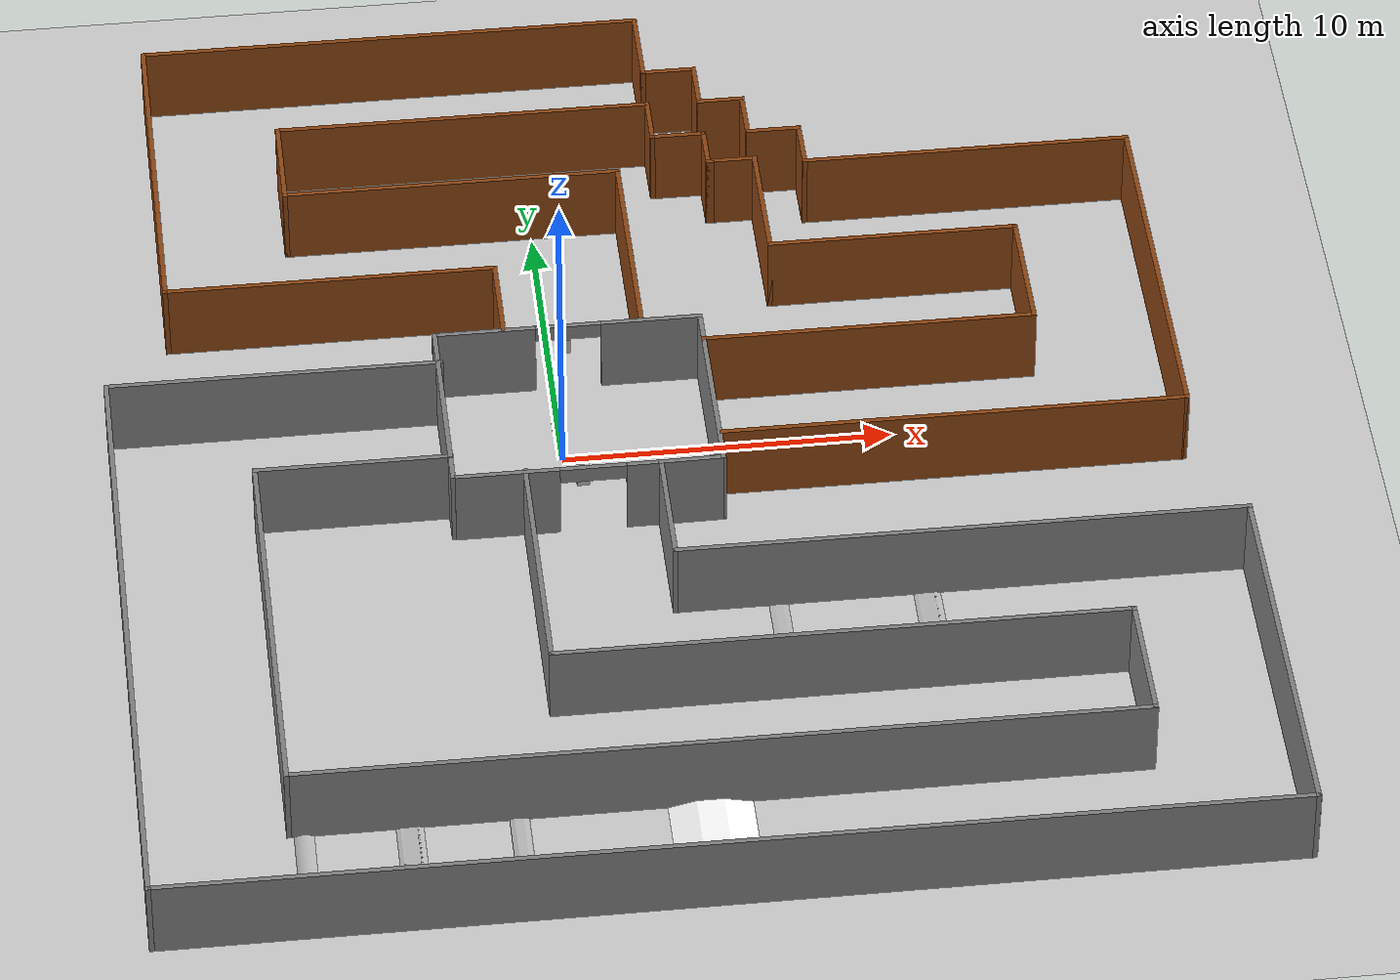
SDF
<sdf version="1.9">
 <world name="empty">
  <physics name="1ms" type="ode">
   <max_step_size>0.001</max_step_size>
   <real_time_factor>1</real_time_factor>
   <real_time_update_rate>1000</real_time_update_rate>
  </physics>
  <plugin name="ignition::gazebo::systems::Physics" filename="ignition-gazebo-physics-system"/>
  <plugin name="ignition::gazebo::systems::UserCommands" filename="ignition-gazebo-user-commands-system"/>
  <plugin name="ignition::gazebo::systems::SceneBroadcaster" filename="ignition-gazebo-scene-broadcaster-system"/>
  <plugin name="ignition::gazebo::systems::Sensors" filename="ignition-gazebo-sensors-system">
   <render_engine>ogre2</render_engine>
  </plugin>
  <plugin name="ignition::gazebo::systems::Contact" filename="libignition-gazebo-contact-system.so"/>
  <gravity>0 0 -9.8</gravity>
  <magnetic_field>6e-06 2.3e-05 -4.2e-05</magnetic_field>
  <atmosphere type="adiabatic"/>
  <scene><ambient>0.4 0.4 0.4 1</ambient><background>0.7 0.7 0.7 1</background><shadows>true</shadows></scene>
  <spherical_coordinates>
   <surface_model>EARTH_WGS84</surface_model>
   <world_frame_orientation>ENU</world_frame_orientation>
   <latitude_deg>-22.9</latitude_deg>
   <longitude_deg>-43.2</longitude_deg>
   <elevation>0</elevation>
   <heading_deg>0</heading_deg>
  </spherical_coordinates>
  <model name="ground_plane">
   <static>true</static>
   <link name="link">
    <collision name="collision">
     <geometry><plane><normal>0 0 1</normal><size>100 100</size></plane></geometry>
    </collision>
    <visual name="visual">
     <geometry><plane><normal>0 0 1</normal><size>100 100</size></plane></geometry>
     <material>
      <ambient>0.8 0.8 0.8 1</ambient>
      <diffuse>0.8 0.8 0.8 1</diffuse>
      <specular>0.8 0.8 0.8 1</specular>
     </material>
    </visual>
    <inertial>
     <mass>1</mass>
     <inertia><ixx>1</ixx><ixy>0</ixy><ixz>0</ixz><iyy>1</iyy><iyz>0</iyz><izz>1</izz></inertia>
    </inertial>
   </link>
  </model>
  <model name="speed_bump_1_short">
   <static>true</static>
   <link name="link">
    <collision name="collision">
     <geometry><mesh><uri>models/speed_bump_1_short//bump_2_060.dae</uri></mesh></geometry>
     <surface><friction><ode><mu>0.90000000000000002</mu><mu2>0.59999999999999998</mu2></ode></friction></surface>
    </collision>
    <visual name="visual">
     <geometry><mesh><uri>models/speed_bump_1_short//bump_2_060.dae</uri></mesh></geometry>
    </visual>
    <inertial>
     <mass>1</mass>
     <inertia><ixx>1</ixx><ixy>0</ixy><ixz>0</ixz><iyy>1</iyy><iyz>0</iyz><izz>1</izz></inertia>
    </inertial>
   </link>
   <pose>6.01068 -10.93096 0.0 0.0 -0.0 1.57469</pose>
  </model>
  <model name="speed_bump_2_short">
   <static>true</static>
   <link name="link">
    <collision name="collision">
     <geometry><mesh><uri>models/speed_bump_2_short//bump_1_060.dae</uri></mesh></geometry>
     <surface><friction><ode><mu>0.90000000000000002</mu><mu2>0.59999999999999998</mu2></ode></friction></surface>
    </collision>
    <visual name="visual">
     <geometry><mesh><uri>models/speed_bump_2_short//bump_1_060.dae</uri></mesh></geometry>
    </visual>
    <inertial>
     <mass>1</mass>
     <inertia><ixx>1</ixx><ixy>0</ixy><ixz>0</ixz><iyy>1</iyy><iyz>0</iyz><izz>1</izz></inertia>
    </inertial>
   </link>
   <pose>10.58606 -10.85246 0.0 0.0 -0.0 1.57586</pose>
  </model>
  <model name="ramp_2">
   <static>true</static>
   <link name="link">
    <collision name="collision">
     <geometry><mesh><uri>models/ramp_2//ramp_020.dae</uri></mesh></geometry>
     <surface><friction><ode><mu>0.90000000000000002</mu><mu2>0.59999999999999998</mu2></ode></friction></surface>
    </collision>
    <visual name="visual"><geometry><mesh><uri>models/ramp_2//ramp_020.dae</uri></mesh></geometry></visual>
    <inertial>
     <mass>1</mass>
     <inertia><ixx>1</ixx><ixy>0</ixy><ixz>0</ixz><iyy>1</iyy><iyz>0</iyz><izz>1</izz></inertia>
    </inertial>
   </link>
   <pose>1.53805 -18.79726 0.0 0.0 -0.0 0.0</pose>
  </model>
  <model name="speed_bump_1">
   <static>true</static>
   <link name="link">
    <collision name="collision">
     <geometry><mesh><uri>models/speed_bump_1//bump_1.dae</uri></mesh></geometry>
     <surface><friction><ode><mu>0.90000000000000002</mu><mu2>0.59999999999999998</mu2></ode></friction></surface>
    </collision>
    <visual name="visual"><geometry><mesh><uri>models/speed_bump_1//bump_1.dae</uri></mesh></geometry></visual>
    <inertial>
     <mass>1</mass>
     <inertia><ixx>1</ixx><ixy>0</ixy><ixz>0</ixz><iyy>1</iyy><iyz>0</iyz><izz>1</izz></inertia>
    </inertial>
   </link>
   <pose>-2.46827 -18.89366 0.0 0.0 -0.0 1.57</pose>
  </model>
  <model name="speed_bump_2">
   <static>true</static>
   <link name="link">
    <collision name="collision">
     <geometry><mesh><uri>models/speed_bump_2//bump_2.dae</uri></mesh></geometry>
     <surface><friction><ode><mu>0.90000000000000002</mu><mu2>0.59999999999999998</mu2></ode></friction></surface>
    </collision>
    <visual name="visual"><geometry><mesh><uri>models/speed_bump_2//bump_2.dae</uri></mesh></geometry></visual>
    <inertial>
     <mass>1</mass>
     <inertia><ixx>1</ixx><ixy>0</ixy><ixz>0</ixz><iyy>1</iyy><iyz>0</iyz><izz>1</izz></inertia>
    </inertial>
   </link>
   <pose>-5.52609 -18.95126 0.0 0.0 -0.0 1.57</pose>
  </model>
  <model name="speed_bump_3">
   <static>true</static>
   <link name="link">
    <collision name="collision">
     <geometry><mesh><uri>models/speed_bump_3//bump_3.dae</uri></mesh></geometry>
     <surface><friction><ode><mu>0.90000000000000002</mu><mu2>0.59999999999999998</mu2></ode></friction></surface>
    </collision>
    <visual name="visual"><geometry><mesh><uri>models/speed_bump_3//bump_3.dae</uri></mesh></geometry></visual>
    <inertial>
     <mass>1</mass>
     <inertia><ixx>1</ixx><ixy>0</ixy><ixz>0</ixz><iyy>1</iyy><iyz>0</iyz><izz>1</izz></inertia>
    </inertial>
   </link>
   <pose>-8.70571 -18.90436 0.0 0.0 -0.0 1.56477</pose>
  </model>
  <model name="indoor_no_doors_2">
   <pose>3.07878 -0.765747 0 0 -0 0</pose>
   <link name="Wall_1">
    <collision name="Wall_1_Collision">
     <geometry><box><size>33.5 0.15 2.5</size></box></geometry>
     <pose>0 0 1.25 0 -0 0</pose>
    </collision>
    <visual name="Wall_1_Visual">
     <pose>0 0 1.25 0 -0 0</pose>
     <geometry><box><size>33.5 0.15 2.5</size></box></geometry>
     <material>
      <ambient>0.5 0.5 0.5 1</ambient>
      <diffuse>0.5 0.5 0.5 1</diffuse>
      <specular>0.2 0.2 0.2 1</specular>
     </material>
     <meta><layer>0</layer></meta>
    </visual>
    <pose>1e-06 -18.2804 0 0 -0 0</pose>
    <inertial>
     <mass>1</mass>
     <inertia><ixx>1</ixx><ixy>0</ixy><ixz>0</ixz><iyy>1</iyy><iyz>0</iyz><izz>1</izz></inertia>
    </inertial>
   </link>
   <link name="Wall_10">
    <collision name="Wall_10_Collision">
     <geometry><box><size>25.25 0.15 2.5</size></box></geometry>
     <pose>0 0 1.25 0 -0 0</pose>
    </collision>
    <visual name="Wall_10_Visual">
     <pose>0 0 1.25 0 -0 0</pose>
     <geometry><box><size>25.25 0.15 2.5</size></box></geometry>
     <material>
      <ambient>0.5 0.5 0.5 1</ambient>
      <diffuse>0.5 0.5 0.5 1</diffuse>
      <specular>0.2 0.2 0.2 1</specular>
     </material>
     <meta><layer>0</layer></meta>
    </visual>
    <pose>0.064266 -14.2262 0 0 -0 3.14159</pose>
    <inertial>
     <mass>1</mass>
     <inertia><ixx>1</ixx><ixy>0</ixy><ixz>0</ixz><iyy>1</iyy><iyz>0</iyz><izz>1</izz></inertia>
    </inertial>
   </link>
   <link name="Wall_11">
    <collision name="Wall_11_Collision">
     <geometry><box><size>13 0.15 2.5</size></box></geometry>
     <pose>0 0 1.25 0 -0 0</pose>
    </collision>
    <visual name="Wall_11_Visual">
     <pose>0 0 1.25 0 -0 0</pose>
     <geometry><box><size>13 0.15 2.5</size></box></geometry>
     <material>
      <ambient>0.5 0.5 0.5 1</ambient>
      <diffuse>0.5 0.5 0.5 1</diffuse>
      <specular>0.2 0.2 0.2 1</specular>
     </material>
     <meta><layer>0</layer></meta>
    </visual>
    <pose>-12.4857 -7.80119 0 0 -0 1.5708</pose>
    <inertial>
     <mass>1</mass>
     <inertia><ixx>1</ixx><ixy>0</ixy><ixz>0</ixz><iyy>1</iyy><iyz>0</iyz><izz>1</izz></inertia>
    </inertial>
   </link>
   <link name="Wall_12">
    <collision name="Wall_12_Collision">
     <geometry><box><size>6 0.15 2.5</size></box></geometry>
     <pose>0 0 1.25 0 -0 0</pose>
    </collision>
    <visual name="Wall_12_Visual">
     <pose>0 0 1.25 0 -0 0</pose>
     <geometry><box><size>6 0.15 2.5</size></box></geometry>
     <material>
      <ambient>0.5 0.5 0.5 1</ambient>
      <diffuse>0.5 0.5 0.5 1</diffuse>
      <specular>0.2 0.2 0.2 1</specular>
     </material>
     <meta><layer>0</layer></meta>
    </visual>
    <pose>-9.56073 -1.37619 0 0 -0 0</pose>
    <inertial>
     <mass>1</mass>
     <inertia><ixx>1</ixx><ixy>0</ixy><ixz>0</ixz><iyy>1</iyy><iyz>0</iyz><izz>1</izz></inertia>
    </inertial>
   </link>
   <link name="Wall_14">
    <collision name="Wall_14_Collision">
     <geometry><box><size>21.25 0.15 2.5</size></box></geometry>
     <pose>0 0 1.25 0 -0 0</pose>
    </collision>
    <visual name="Wall_14_Visual">
     <pose>0 0 1.25 0 -0 0</pose>
     <geometry><box><size>21.25 0.15 2.5</size></box></geometry>
     <material>
      <ambient>0.5 0.5 0.5 1</ambient>
      <diffuse>0.5 0.5 0.5 1</diffuse>
      <specular>0.2 0.2 0.2 1</specular>
     </material>
     <meta><layer>0</layer></meta>
    </visual>
    <pose>-16.675 -7.73042 0 0 -0 1.5708</pose>
    <inertial>
     <mass>1</mass>
     <inertia><ixx>1</ixx><ixy>0</ixy><ixz>0</ixz><iyy>1</iyy><iyz>0</iyz><izz>1</izz></inertia>
    </inertial>
   </link>
   <link name="Wall_15">
    <collision name="Wall_15_Collision">
     <geometry><box><size>10.25 0.15 2.5</size></box></geometry>
     <pose>0 0 1.25 0 -0 0</pose>
    </collision>
    <visual name="Wall_15_Visual">
     <pose>0 0 1.25 0 -0 0</pose>
     <geometry><box><size>10.25 0.15 2.5</size></box></geometry>
     <material>
      <ambient>0.5 0.5 0.5 1</ambient>
      <diffuse>0.5 0.5 0.5 1</diffuse>
      <specular>0.2 0.2 0.2 1</specular>
     </material>
     <meta><layer>0</layer></meta>
    </visual>
    <pose>-11.625 2.81958 0 0 -0 0</pose>
    <inertial>
     <mass>1</mass>
     <inertia><ixx>1</ixx><ixy>0</ixy><ixz>0</ixz><iyy>1</iyy><iyz>0</iyz><izz>1</izz></inertia>
    </inertial>
   </link>
   <link name="Wall_17">
    <collision name="Wall_17_Collision">
     <geometry><box><size>6.5 0.15 2.5</size></box></geometry>
     <pose>0 0 1.25 0 -0 0</pose>
    </collision>
    <visual name="Wall_17_Visual">
     <pose>0 0 1.25 0 -0 0</pose>
     <geometry><box><size>6.5 0.15 2.5</size></box></geometry>
     <material>
      <ambient>0.5 0.5 0.5 1</ambient>
      <diffuse>0.5 0.5 0.5 1</diffuse>
      <specular>0.2 0.2 0.2 1</specular>
     </material>
     <meta><layer>0</layer></meta>
    </visual>
    <pose>-6.65095 0.864976 0 0 0 -1.5708</pose>
    <inertial>
     <mass>1</mass>
     <inertia><ixx>1</ixx><ixy>0</ixy><ixz>0</ixz><iyy>1</iyy><iyz>0</iyz><izz>1</izz></inertia>
    </inertial>
   </link>
   <link name="Wall_2">
    <collision name="Wall_2_Collision">
     <geometry><box><size>12.25 0.15 2.5</size></box></geometry>
     <pose>0 0 1.25 0 -0 0</pose>
    </collision>
    <visual name="Wall_2_Visual">
     <pose>0 0 1.25 0 -0 0</pose>
     <geometry><box><size>12.25 0.15 2.5</size></box></geometry>
     <material>
      <ambient>0.5 0.5 0.5 1</ambient>
      <diffuse>0.5 0.5 0.5 1</diffuse>
      <specular>0.2 0.2 0.2 1</specular>
     </material>
     <meta><layer>0</layer></meta>
    </visual>
    <pose>16.675 -12.2304 0 0 -0 1.5708</pose>
    <inertial>
     <mass>1</mass>
     <inertia><ixx>1</ixx><ixy>0</ixy><ixz>0</ixz><iyy>1</iyy><iyz>0</iyz><izz>1</izz></inertia>
    </inertial>
   </link>
   <link name="Wall_24">
    <pose>-2.60095 4.03998 0 0 -0 0</pose>
    <visual name="Wall_24_Visual_0">
     <pose>-2.55487 0 1.25 0 -0 0</pose>
     <geometry><box><size>3.14026 0.15 2.5</size></box></geometry>
     <material>
      <ambient>0.5 0.5 0.5 1</ambient>
      <diffuse>0.5 0.5 0.5 1</diffuse>
      <specular>0.2 0.2 0.2 1</specular>
     </material>
     <meta><layer>0</layer></meta>
    </visual>
    <collision name="Wall_24_Collision_0">
     <geometry><box><size>3.14026 0.15 2.5</size></box></geometry>
     <pose>-2.55487 0 1.25 0 -0 0</pose>
    </collision>
    <visual name="Wall_24_Visual_1">
     <pose>2.57013 0 1.25 0 -0 0</pose>
     <geometry><box><size>3.10974 0.15 2.5</size></box></geometry>
     <material>
      <ambient>0.5 0.5 0.5 1</ambient>
      <diffuse>0.5 0.5 0.5 1</diffuse>
      <specular>0.2 0.2 0.2 1</specular>
     </material>
     <meta><layer>0</layer></meta>
    </visual>
    <collision name="Wall_24_Collision_1">
     <geometry><box><size>3.10974 0.15 2.5</size></box></geometry>
     <pose>2.57013 0 1.25 0 -0 0</pose>
    </collision>
    <visual name="Wall_24_Visual_2">
     <pose>0.015256 0 2.25 0 -0 0</pose>
     <geometry><box><size>2 0.15 0.5</size></box></geometry>
     <material>
      <ambient>0.5 0.5 0.5 1</ambient>
      <diffuse>0.5 0.5 0.5 1</diffuse>
      <specular>0.2 0.2 0.2 1</specular>
     </material>
     <meta><layer>0</layer></meta>
    </visual>
    <collision name="Wall_24_Collision_2">
     <geometry><box><size>2 0.15 0.5</size></box></geometry>
     <pose>0.015256 0 2.25 0 -0 0</pose>
    </collision>
    <inertial>
     <mass>1</mass>
     <inertia><ixx>1</ixx><ixy>0</ixy><ixz>0</ixz><iyy>1</iyy><iyz>0</iyz><izz>1</izz></inertia>
    </inertial>
   </link>
   <link name="Wall_27">
    <collision name="Wall_27_Collision">
     <geometry><box><size>6.5 0.15 2.5</size></box></geometry>
     <pose>0 0 1.25 0 -0 0</pose>
    </collision>
    <visual name="Wall_27_Visual">
     <pose>0 0 1.25 0 -0 0</pose>
     <geometry><box><size>6.5 0.15 2.5</size></box></geometry>
     <material>
      <ambient>0.5 0.5 0.5 1</ambient>
      <diffuse>0.5 0.5 0.5 1</diffuse>
      <specular>0.2 0.2 0.2 1</specular>
     </material>
     <meta><layer>0</layer></meta>
    </visual>
    <pose>1.44905 0.864976 0 0 0 -1.5708</pose>
    <inertial>
     <mass>1</mass>
     <inertia><ixx>1</ixx><ixy>0</ixy><ixz>0</ixz><iyy>1</iyy><iyz>0</iyz><izz>1</izz></inertia>
    </inertial>
   </link>
   <link name="Wall_29">
    <collision name="Wall_29_Collision">
     <geometry><box><size>2.02416 0.15 2.5</size></box></geometry>
     <pose>0 0 1.25 0 -0 0</pose>
    </collision>
    <visual name="Wall_29_Visual">
     <pose>0 0 1.25 0 -0 0</pose>
     <geometry><box><size>2.02416 0.15 2.5</size></box></geometry>
     <material>
      <ambient>0.5 0.5 0.5 1</ambient>
      <diffuse>0.5 0.5 0.5 1</diffuse>
      <specular>0.2 0.2 0.2 1</specular>
     </material>
     <meta><layer>0</layer></meta>
    </visual>
    <pose>0.512027 -2.32022 0 0 0 -3.13071</pose>
    <inertial>
     <mass>1</mass>
     <inertia><ixx>1</ixx><ixy>0</ixy><ixz>0</ixz><iyy>1</iyy><iyz>0</iyz><izz>1</izz></inertia>
    </inertial>
   </link>
   <link name="Wall_3">
    <collision name="Wall_3_Collision">
     <geometry><box><size>17.25 0.15 2.5</size></box></geometry>
     <pose>0 0 1.25 0 -0 0</pose>
    </collision>
    <visual name="Wall_3_Visual">
     <pose>0 0 1.25 0 -0 0</pose>
     <geometry><box><size>17.25 0.15 2.5</size></box></geometry>
     <material>
      <ambient>0.5 0.5 0.5 1</ambient>
      <diffuse>0.5 0.5 0.5 1</diffuse>
      <specular>0.2 0.2 0.2 1</specular>
     </material>
     <meta><layer>0</layer></meta>
    </visual>
    <pose>8.125 -6.18042 0 0 -0 3.14159</pose>
    <inertial>
     <mass>1</mass>
     <inertia><ixx>1</ixx><ixy>0</ixy><ixz>0</ixz><iyy>1</iyy><iyz>0</iyz><izz>1</izz></inertia>
    </inertial>
   </link>
   <link name="Wall_31">
    <collision name="Wall_31_Collision">
     <geometry><box><size>14.25 0.15 2.5</size></box></geometry>
     <pose>0 0 1.25 0 -0 0</pose>
    </collision>
    <visual name="Wall_31_Visual">
     <pose>0 0 1.25 0 -0 0</pose>
     <geometry><box><size>14.25 0.15 2.5</size></box></geometry>
     <material>
      <ambient>0.55 0.27 0.07 1</ambient>
      <diffuse>0.55 0.27 0.07 1</diffuse>
      <specular>0.2 0.2 0.1 1</specular>
     </material>
     <meta><layer>0</layer></meta>
    </visual>
    <pose>8.54753 -1.21958 0 0 -0 0</pose>
    <inertial>
     <mass>1</mass>
     <inertia><ixx>1</ixx><ixy>0</ixy><ixz>0</ixz><iyy>1</iyy><iyz>0</iyz><izz>1</izz></inertia>
    </inertial>
   </link>
   <link name="Wall_32">
    <collision name="Wall_32_Collision">
     <geometry><box><size>12.25 0.15 2.5</size></box></geometry>
     <pose>0 0 1.25 0 -0 0</pose>
    </collision>
    <visual name="Wall_32_Visual">
     <pose>0 0 1.25 0 -0 0</pose>
     <geometry><box><size>12.25 0.15 2.5</size></box></geometry>
     <material>
      <ambient>0.55 0.27 0.07 1</ambient>
      <diffuse>0.55 0.27 0.07 1</diffuse>
      <specular>0.2 0.2 0.1 1</specular>
     </material>
     <meta><layer>0</layer></meta>
    </visual>
    <pose>15.5975 4.83042 0 0 -0 1.5708</pose>
    <inertial>
     <mass>1</mass>
     <inertia><ixx>1</ixx><ixy>0</ixy><ixz>0</ixz><iyy>1</iyy><iyz>0</iyz><izz>1</izz></inertia>
    </inertial>
   </link>
   <link name="Wall_33">
    <collision name="Wall_33_Collision">
     <geometry><box><size>10.25 0.15 2.5</size></box></geometry>
     <pose>0 0 1.25 0 -0 0</pose>
    </collision>
    <visual name="Wall_33_Visual">
     <pose>0 0 1.25 0 -0 0</pose>
     <geometry><box><size>10.25 0.15 2.5</size></box></geometry>
     <material>
      <ambient>0.55 0.27 0.07 1</ambient>
      <diffuse>0.55 0.27 0.07 1</diffuse>
      <specular>0.2 0.2 0.1 1</specular>
     </material>
     <meta><layer>0</layer></meta>
    </visual>
    <pose>10.5475 10.8804 0 0 -0 3.14159</pose>
    <inertial>
     <mass>1</mass>
     <inertia><ixx>1</ixx><ixy>0</ixy><ixz>0</ixz><iyy>1</iyy><iyz>0</iyz><izz>1</izz></inertia>
    </inertial>
   </link>
   <link name="Wall_35">
    <collision name="Wall_35_Collision">
     <geometry><box><size>4.25 0.15 2.5</size></box></geometry>
     <pose>0 0 1.25 0 -0 0</pose>
    </collision>
    <visual name="Wall_35_Visual">
     <pose>0 0 1.25 0 -0 0</pose>
     <geometry><box><size>4.25 0.15 2.5</size></box></geometry>
     <material>
      <ambient>0.55 0.27 0.07 1</ambient>
      <diffuse>0.55 0.27 0.07 1</diffuse>
      <specular>0.2 0.2 0.1 1</specular>
     </material>
     <meta><layer>0</layer></meta>
    </visual>
    <pose>3.95699 9.13887 0 0 0 -1.5708</pose>
    <inertial>
     <mass>1</mass>
     <inertia><ixx>1</ixx><ixy>0</ixy><ixz>0</ixz><iyy>1</iyy><iyz>0</iyz><izz>1</izz></inertia>
    </inertial>
   </link>
   <link name="Wall_36">
    <collision name="Wall_36_Collision">
     <geometry><box><size>7.75 0.15 2.5</size></box></geometry>
     <pose>0 0 1.25 0 -0 0</pose>
    </collision>
    <visual name="Wall_36_Visual">
     <pose>0 0 1.25 0 -0 0</pose>
     <geometry><box><size>7.75 0.15 2.5</size></box></geometry>
     <material>
      <ambient>0.55 0.27 0.07 1</ambient>
      <diffuse>0.55 0.27 0.07 1</diffuse>
      <specular>0.2 0.2 0.1 1</specular>
     </material>
     <meta><layer>0</layer></meta>
    </visual>
    <pose>7.75699 7.08887 0 0 -0 0</pose>
    <inertial>
     <mass>1</mass>
     <inertia><ixx>1</ixx><ixy>0</ixy><ixz>0</ixz><iyy>1</iyy><iyz>0</iyz><izz>1</izz></inertia>
    </inertial>
   </link>
   <link name="Wall_37">
    <collision name="Wall_37_Collision">
     <geometry><box><size>4.25 0.15 2.5</size></box></geometry>
     <pose>0 0 1.25 0 -0 0</pose>
    </collision>
    <visual name="Wall_37_Visual">
     <pose>0 0 1.25 0 -0 0</pose>
     <geometry><box><size>4.25 0.15 2.5</size></box></geometry>
     <material>
      <ambient>0.55 0.27 0.07 1</ambient>
      <diffuse>0.55 0.27 0.07 1</diffuse>
      <specular>0.2 0.2 0.1 1</specular>
     </material>
     <meta><layer>0</layer></meta>
    </visual>
    <pose>11.557 5.03887 0 0 0 -1.5708</pose>
    <inertial>
     <mass>1</mass>
     <inertia><ixx>1</ixx><ixy>0</ixy><ixz>0</ixz><iyy>1</iyy><iyz>0</iyz><izz>1</izz></inertia>
    </inertial>
   </link>
   <link name="Wall_38">
    <collision name="Wall_38_Collision">
     <geometry><box><size>10.25 0.15 2.5</size></box></geometry>
     <pose>0 0 1.25 0 -0 0</pose>
    </collision>
    <visual name="Wall_38_Visual">
     <pose>0 0 1.25 0 -0 0</pose>
     <geometry><box><size>10.25 0.15 2.5</size></box></geometry>
     <material>
      <ambient>0.55 0.27 0.07 1</ambient>
      <diffuse>0.55 0.27 0.07 1</diffuse>
      <specular>0.2 0.2 0.1 1</specular>
     </material>
     <meta><layer>0</layer></meta>
    </visual>
    <pose>6.50699 2.98887 0 0 -0 3.14159</pose>
    <inertial>
     <mass>1</mass>
     <inertia><ixx>1</ixx><ixy>0</ixy><ixz>0</ixz><iyy>1</iyy><iyz>0</iyz><izz>1</izz></inertia>
    </inertial>
   </link>
   <link name="Wall_4">
    <collision name="Wall_4_Collision">
     <geometry><box><size>4 0.15 2.5</size></box></geometry>
     <pose>0 0 1.25 0 -0 0</pose>
    </collision>
    <visual name="Wall_4_Visual">
     <pose>0 0 1.25 0 -0 0</pose>
     <geometry><box><size>4 0.15 2.5</size></box></geometry>
     <material>
      <ambient>0.5 0.5 0.5 1</ambient>
      <diffuse>0.5 0.5 0.5 1</diffuse>
      <specular>0.2 0.2 0.2 1</specular>
     </material>
     <meta><layer>0</layer></meta>
    </visual>
    <pose>-0.424999 -4.25542 0 0 -0 1.5708</pose>
    <inertial>
     <mass>1</mass>
     <inertia><ixx>1</ixx><ixy>0</ixy><ixz>0</ixz><iyy>1</iyy><iyz>0</iyz><izz>1</izz></inertia>
    </inertial>
   </link>
   <link name="Wall_40">
    <collision name="Wall_40_Collision">
     <geometry><box><size>1.5 0.15 2.5</size></box></geometry>
     <pose>0 0 1.25 0 -0 0</pose>
    </collision>
    <visual name="Wall_40_Visual">
     <pose>0 0 1.25 0 -0 0</pose>
     <geometry><box><size>1.5 0.15 2.5</size></box></geometry>
     <material>
      <ambient>0.55 0.27 0.07 1</ambient>
      <diffuse>0.55 0.27 0.07 1</diffuse>
      <specular>0.2 0.2 0.1 1</specular>
     </material>
     <meta><layer>0</layer></meta>
    </visual>
    <pose>3.28199 11.1889 0 0 -0 3.14159</pose>
    <inertial>
     <mass>1</mass>
     <inertia><ixx>1</ixx><ixy>0</ixy><ixz>0</ixz><iyy>1</iyy><iyz>0</iyz><izz>1</izz></inertia>
    </inertial>
   </link>
   <link name="Wall_41">
    <collision name="Wall_41_Collision">
     <geometry><box><size>0.25 0.15 2.5</size></box></geometry>
     <pose>0 0 1.25 0 -0 0</pose>
    </collision>
    <visual name="Wall_41_Visual">
     <pose>0 0 1.25 0 -0 0</pose>
     <geometry><box><size>0.25 0.15 2.5</size></box></geometry>
     <material>
      <ambient>0.55 0.27 0.07 1</ambient>
      <diffuse>0.55 0.27 0.07 1</diffuse>
      <specular>0.2 0.2 0.1 1</specular>
     </material>
     <meta><layer>0</layer></meta>
    </visual>
    <pose>2.55699 11.1889 0 0 -0 3.14159</pose>
    <inertial>
     <mass>1</mass>
     <inertia><ixx>1</ixx><ixy>0</ixy><ixz>0</ixz><iyy>1</iyy><iyz>0</iyz><izz>1</izz></inertia>
    </inertial>
   </link>
   <link name="Wall_42">
    <collision name="Wall_42_Collision">
     <geometry><box><size>1.5 0.15 2.5</size></box></geometry>
     <pose>0 0 1.25 0 -0 0</pose>
    </collision>
    <visual name="Wall_42_Visual">
     <pose>0 0 1.25 0 -0 0</pose>
     <geometry><box><size>1.5 0.15 2.5</size></box></geometry>
     <material>
      <ambient>0.55 0.27 0.07 1</ambient>
      <diffuse>0.55 0.27 0.07 1</diffuse>
      <specular>0.2 0.2 0.1 1</specular>
     </material>
     <meta><layer>0</layer></meta>
    </visual>
    <pose>2.50699 11.8639 0 0 -0 1.5708</pose>
    <inertial>
     <mass>1</mass>
     <inertia><ixx>1</ixx><ixy>0</ixy><ixz>0</ixz><iyy>1</iyy><iyz>0</iyz><izz>1</izz></inertia>
    </inertial>
   </link>
   <link name="Wall_43">
    <collision name="Wall_43_Collision">
     <geometry><box><size>0.15 0.15 2.5</size></box></geometry>
     <pose>0 0 1.25 0 -0 0</pose>
    </collision>
    <visual name="Wall_43_Visual">
     <pose>0 0 1.25 0 -0 0</pose>
     <geometry><box><size>0.15 0.15 2.5</size></box></geometry>
     <material>
      <ambient>0.55 0.27 0.07 1</ambient>
      <diffuse>0.55 0.27 0.07 1</diffuse>
      <specular>0.2 0.2 0.1 1</specular>
     </material>
     <meta><layer>0</layer></meta>
    </visual>
    <pose>2.50699 12.5389 0 0 -0 0</pose>
    <inertial>
     <mass>1</mass>
     <inertia><ixx>1</ixx><ixy>0</ixy><ixz>0</ixz><iyy>1</iyy><iyz>0</iyz><izz>1</izz></inertia>
    </inertial>
   </link>
   <link name="Wall_44">
    <collision name="Wall_44_Collision">
     <geometry><box><size>1.75 0.15 2.5</size></box></geometry>
     <pose>0 0 1.25 0 -0 0</pose>
    </collision>
    <visual name="Wall_44_Visual">
     <pose>0 0 1.25 0 -0 0</pose>
     <geometry><box><size>1.75 0.15 2.5</size></box></geometry>
     <material>
      <ambient>0.55 0.27 0.07 1</ambient>
      <diffuse>0.55 0.27 0.07 1</diffuse>
      <specular>0.2 0.2 0.1 1</specular>
     </material>
     <meta><layer>0</layer></meta>
    </visual>
    <pose>1.70699 12.5389 0 0 -0 3.14159</pose>
    <inertial>
     <mass>1</mass>
     <inertia><ixx>1</ixx><ixy>0</ixy><ixz>0</ixz><iyy>1</iyy><iyz>0</iyz><izz>1</izz></inertia>
    </inertial>
   </link>
   <link name="Wall_46">
    <collision name="Wall_46_Collision">
     <geometry><box><size>1.75 0.15 2.5</size></box></geometry>
     <pose>0 0 1.25 0 -0 0</pose>
    </collision>
    <visual name="Wall_46_Visual">
     <pose>0 0 1.25 0 -0 0</pose>
     <geometry><box><size>1.75 0.15 2.5</size></box></geometry>
     <material>
      <ambient>0.55 0.27 0.07 1</ambient>
      <diffuse>0.55 0.27 0.07 1</diffuse>
      <specular>0.2 0.2 0.1 1</specular>
     </material>
     <meta><layer>0</layer></meta>
    </visual>
    <pose>0.906992 13.3389 0 0 -0 1.5708</pose>
    <inertial>
     <mass>1</mass>
     <inertia><ixx>1</ixx><ixy>0</ixy><ixz>0</ixz><iyy>1</iyy><iyz>0</iyz><izz>1</izz></inertia>
    </inertial>
   </link>
   <link name="Wall_48">
    <collision name="Wall_48_Collision">
     <geometry><box><size>11.75 0.15 2.5</size></box></geometry>
     <pose>0 0 1.25 0 -0 0</pose>
    </collision>
    <visual name="Wall_48_Visual">
     <pose>0 0 1.25 0 -0 0</pose>
     <geometry><box><size>11.75 0.15 2.5</size></box></geometry>
     <material>
      <ambient>0.55 0.27 0.07 1</ambient>
      <diffuse>0.55 0.27 0.07 1</diffuse>
      <specular>0.2 0.2 0.1 1</specular>
     </material>
     <meta><layer>0</layer></meta>
    </visual>
    <pose>-4.89301 14.1389 0 0 -0 3.14159</pose>
    <inertial>
     <mass>1</mass>
     <inertia><ixx>1</ixx><ixy>0</ixy><ixz>0</ixz><iyy>1</iyy><iyz>0</iyz><izz>1</izz></inertia>
    </inertial>
   </link>
   <link name="Wall_49">
    <collision name="Wall_49_Collision">
     <geometry><box><size>3.25 0.15 2.5</size></box></geometry>
     <pose>0 0 1.25 0 -0 0</pose>
    </collision>
    <visual name="Wall_49_Visual">
     <pose>0 0 1.25 0 -0 0</pose>
     <geometry><box><size>3.25 0.15 2.5</size></box></geometry>
     <material>
      <ambient>0.55 0.27 0.07 1</ambient>
      <diffuse>0.55 0.27 0.07 1</diffuse>
      <specular>0.2 0.2 0.1 1</specular>
     </material>
     <meta><layer>0</layer></meta>
    </visual>
    <pose>-10.693 12.5889 0 0 0 -1.5708</pose>
    <inertial>
     <mass>1</mass>
     <inertia><ixx>1</ixx><ixy>0</ixy><ixz>0</ixz><iyy>1</iyy><iyz>0</iyz><izz>1</izz></inertia>
    </inertial>
   </link>
   <link name="Wall_5">
    <pose>-3.475 -2.33042 0 0 -0 3.14159</pose>
    <visual name="Wall_5_Visual_0">
     <pose>-2.57115 0 1.25 0 -0 0</pose>
     <geometry><box><size>1.1077 0.15 2.5</size></box></geometry>
     <material>
      <ambient>0.5 0.5 0.5 1</ambient>
      <diffuse>0.5 0.5 0.5 1</diffuse>
      <specular>0.2 0.2 0.2 1</specular>
     </material>
     <meta><layer>0</layer></meta>
    </visual>
    <collision name="Wall_5_Collision_0">
     <geometry><box><size>1.1077 0.15 2.5</size></box></geometry>
     <pose>-2.57115 0 1.25 0 -0 0</pose>
    </collision>
    <visual name="Wall_5_Visual_1">
     <pose>1.55385 0 1.25 0 -0 0</pose>
     <geometry><box><size>3.1423 0.15 2.5</size></box></geometry>
     <material>
      <ambient>0.5 0.5 0.5 1</ambient>
      <diffuse>0.5 0.5 0.5 1</diffuse>
      <specular>0.2 0.2 0.2 1</specular>
     </material>
     <meta><layer>0</layer></meta>
    </visual>
    <collision name="Wall_5_Collision_1">
     <geometry><box><size>3.1423 0.15 2.5</size></box></geometry>
     <pose>1.55385 0 1.25 0 -0 0</pose>
    </collision>
    <visual name="Wall_5_Visual_2">
     <pose>-1.0173 0 2.25 0 -0 0</pose>
     <geometry><box><size>2 0.15 0.5</size></box></geometry>
     <material>
      <ambient>0.5 0.5 0.5 1</ambient>
      <diffuse>0.5 0.5 0.5 1</diffuse>
      <specular>0.2 0.2 0.2 1</specular>
     </material>
     <meta><layer>0</layer></meta>
    </visual>
    <collision name="Wall_5_Collision_2">
     <geometry><box><size>2 0.15 0.5</size></box></geometry>
     <pose>-1.0173 0 2.25 0 -0 0</pose>
    </collision>
    <inertial>
     <mass>1</mass>
     <inertia><ixx>1</ixx><ixy>0</ixy><ixz>0</ixz><iyy>1</iyy><iyz>0</iyz><izz>1</izz></inertia>
    </inertial>
   </link>
   <link name="Wall_50">
    <collision name="Wall_50_Collision">
     <geometry><box><size>10.5 0.15 2.5</size></box></geometry>
     <pose>0 0 1.25 0 -0 0</pose>
    </collision>
    <visual name="Wall_50_Visual">
     <pose>0 0 1.25 0 -0 0</pose>
     <geometry><box><size>10.5 0.15 2.5</size></box></geometry>
     <material>
      <ambient>0.55 0.27 0.07 1</ambient>
      <diffuse>0.55 0.27 0.07 1</diffuse>
      <specular>0.2 0.2 0.1 1</specular>
     </material>
     <meta><layer>0</layer></meta>
    </visual>
    <pose>-5.51801 11.0389 0 0 -0 0</pose>
    <inertial>
     <mass>1</mass>
     <inertia><ixx>1</ixx><ixy>0</ixy><ixz>0</ixz><iyy>1</iyy><iyz>0</iyz><izz>1</izz></inertia>
    </inertial>
   </link>
   <link name="Wall_52">
    <collision name="Wall_52_Collision">
     <geometry><box><size>7 0.15 2.5</size></box></geometry>
     <pose>0 0 1.25 0 -0 0</pose>
    </collision>
    <visual name="Wall_52_Visual">
     <pose>0 0 1.25 0 -0 0</pose>
     <geometry><box><size>7 0.15 2.5</size></box></geometry>
     <material>
      <ambient>0.55 0.27 0.07 1</ambient>
      <diffuse>0.55 0.27 0.07 1</diffuse>
      <specular>0.2 0.2 0.1 1</specular>
     </material>
     <meta><layer>0</layer></meta>
    </visual>
    <pose>-0.343008 7.61387 0 0 0 -1.5708</pose>
    <inertial>
     <mass>1</mass>
     <inertia><ixx>1</ixx><ixy>0</ixy><ixz>0</ixz><iyy>1</iyy><iyz>0</iyz><izz>1</izz></inertia>
    </inertial>
   </link>
   <link name="Wall_54">
    <collision name="Wall_54_Collision">
     <geometry><box><size>1.75 0.15 2.5</size></box></geometry>
     <pose>0 0 1.25 0 -0 0</pose>
    </collision>
    <visual name="Wall_54_Visual">
     <pose>0 0 1.25 0 -0 0</pose>
     <geometry><box><size>1.75 0.15 2.5</size></box></geometry>
     <material>
      <ambient>0.55 0.27 0.07 1</ambient>
      <diffuse>0.55 0.27 0.07 1</diffuse>
      <specular>0.2 0.2 0.1 1</specular>
     </material>
     <meta><layer>0</layer></meta>
    </visual>
    <pose>5.49753 11.6804 0 0 -0 1.5708</pose>
    <inertial>
     <mass>1</mass>
     <inertia><ixx>1</ixx><ixy>0</ixy><ixz>0</ixz><iyy>1</iyy><iyz>0</iyz><izz>1</izz></inertia>
    </inertial>
   </link>
   <link name="Wall_55">
    <collision name="Wall_55_Collision">
     <geometry><box><size>1.75 0.15 2.5</size></box></geometry>
     <pose>0 0 1.25 0 -0 0</pose>
    </collision>
    <visual name="Wall_55_Visual">
     <pose>0 0 1.25 0 -0 0</pose>
     <geometry><box><size>1.75 0.15 2.5</size></box></geometry>
     <material>
      <ambient>0.55 0.27 0.07 1</ambient>
      <diffuse>0.55 0.27 0.07 1</diffuse>
      <specular>0.2 0.2 0.1 1</specular>
     </material>
     <meta><layer>0</layer></meta>
    </visual>
    <pose>4.69753 12.4804 0 0 -0 3.14159</pose>
    <inertial>
     <mass>1</mass>
     <inertia><ixx>1</ixx><ixy>0</ixy><ixz>0</ixz><iyy>1</iyy><iyz>0</iyz><izz>1</izz></inertia>
    </inertial>
   </link>
   <link name="Wall_56">
    <collision name="Wall_56_Collision">
     <geometry><box><size>1.75 0.15 2.5</size></box></geometry>
     <pose>0 0 1.25 0 -0 0</pose>
    </collision>
    <visual name="Wall_56_Visual">
     <pose>0 0 1.25 0 -0 0</pose>
     <geometry><box><size>1.75 0.15 2.5</size></box></geometry>
     <material>
      <ambient>0.55 0.27 0.07 1</ambient>
      <diffuse>0.55 0.27 0.07 1</diffuse>
      <specular>0.2 0.2 0.1 1</specular>
     </material>
     <meta><layer>0</layer></meta>
    </visual>
    <pose>3.89753 13.2804 0 0 -0 1.5708</pose>
    <inertial>
     <mass>1</mass>
     <inertia><ixx>1</ixx><ixy>0</ixy><ixz>0</ixz><iyy>1</iyy><iyz>0</iyz><izz>1</izz></inertia>
    </inertial>
   </link>
   <link name="Wall_57">
    <collision name="Wall_57_Collision">
     <geometry><box><size>1.5 0.15 2.5</size></box></geometry>
     <pose>0 0 1.25 0 -0 0</pose>
    </collision>
    <visual name="Wall_57_Visual">
     <pose>0 0 1.25 0 -0 0</pose>
     <geometry><box><size>1.5 0.15 2.5</size></box></geometry>
     <material>
      <ambient>0.55 0.27 0.07 1</ambient>
      <diffuse>0.55 0.27 0.07 1</diffuse>
      <specular>0.2 0.2 0.1 1</specular>
     </material>
     <meta><layer>0</layer></meta>
    </visual>
    <pose>3.22253 14.0804 0 0 -0 3.14159</pose>
    <inertial>
     <mass>1</mass>
     <inertia><ixx>1</ixx><ixy>0</ixy><ixz>0</ixz><iyy>1</iyy><iyz>0</iyz><izz>1</izz></inertia>
    </inertial>
   </link>
   <link name="Wall_58">
    <collision name="Wall_58_Collision">
     <geometry><box><size>1.75 0.15 2.5</size></box></geometry>
     <pose>0 0 1.25 0 -0 0</pose>
    </collision>
    <visual name="Wall_58_Visual">
     <pose>0 0 1.25 0 -0 0</pose>
     <geometry><box><size>1.75 0.15 2.5</size></box></geometry>
     <material>
      <ambient>0.55 0.27 0.07 1</ambient>
      <diffuse>0.55 0.27 0.07 1</diffuse>
      <specular>0.2 0.2 0.1 1</specular>
     </material>
     <meta><layer>0</layer></meta>
    </visual>
    <pose>2.54753 14.8804 0 0 -0 1.5708</pose>
    <inertial>
     <mass>1</mass>
     <inertia><ixx>1</ixx><ixy>0</ixy><ixz>0</ixz><iyy>1</iyy><iyz>0</iyz><izz>1</izz></inertia>
    </inertial>
   </link>
   <link name="Wall_59">
    <collision name="Wall_59_Collision">
     <geometry><box><size>1.75 0.15 2.5</size></box></geometry>
     <pose>0 0 1.25 0 -0 0</pose>
    </collision>
    <visual name="Wall_59_Visual">
     <pose>0 0 1.25 0 -0 0</pose>
     <geometry><box><size>1.75 0.15 2.5</size></box></geometry>
     <material>
      <ambient>0.55 0.27 0.07 1</ambient>
      <diffuse>0.55 0.27 0.07 1</diffuse>
      <specular>0.2 0.2 0.1 1</specular>
     </material>
     <meta><layer>0</layer></meta>
    </visual>
    <pose>1.74753 15.6804 0 0 -0 3.14159</pose>
    <inertial>
     <mass>1</mass>
     <inertia><ixx>1</ixx><ixy>0</ixy><ixz>0</ixz><iyy>1</iyy><iyz>0</iyz><izz>1</izz></inertia>
    </inertial>
   </link>
   <link name="Wall_60">
    <collision name="Wall_60_Collision">
     <geometry><box><size>2.75 0.15 2.5</size></box></geometry>
     <pose>0 0 1.25 0 -0 0</pose>
    </collision>
    <visual name="Wall_60_Visual">
     <pose>0 0 1.25 0 -0 0</pose>
     <geometry><box><size>2.75 0.15 2.5</size></box></geometry>
     <material>
      <ambient>0.55 0.27 0.07 1</ambient>
      <diffuse>0.55 0.27 0.07 1</diffuse>
      <specular>0.2 0.2 0.1 1</specular>
     </material>
     <meta><layer>0</layer></meta>
    </visual>
    <pose>0.94753 16.9804 0 0 -0 1.5708</pose>
    <inertial>
     <mass>1</mass>
     <inertia><ixx>1</ixx><ixy>0</ixy><ixz>0</ixz><iyy>1</iyy><iyz>0</iyz><izz>1</izz></inertia>
    </inertial>
   </link>
   <link name="Wall_61">
    <collision name="Wall_61_Collision">
     <geometry><box><size>15.75 0.15 2.5</size></box></geometry>
     <pose>0 0 1.25 0 -0 0</pose>
    </collision>
    <visual name="Wall_61_Visual">
     <pose>0 0 1.25 0 -0 0</pose>
     <geometry><box><size>15.75 0.15 2.5</size></box></geometry>
     <material>
      <ambient>0.55 0.27 0.07 1</ambient>
      <diffuse>0.55 0.27 0.07 1</diffuse>
      <specular>0.2 0.2 0.1 1</specular>
     </material>
     <meta><layer>0</layer></meta>
    </visual>
    <pose>-6.85247 18.2804 0 0 -0 3.14159</pose>
    <inertial>
     <mass>1</mass>
     <inertia><ixx>1</ixx><ixy>0</ixy><ixz>0</ixz><iyy>1</iyy><iyz>0</iyz><izz>1</izz></inertia>
    </inertial>
   </link>
   <link name="Wall_62">
    <collision name="Wall_62_Collision">
     <geometry><box><size>11.5 0.15 2.5</size></box></geometry>
     <pose>0 0 1.25 0 -0 0</pose>
    </collision>
    <visual name="Wall_62_Visual">
     <pose>0 0 1.25 0 -0 0</pose>
     <geometry><box><size>11.5 0.15 2.5</size></box></geometry>
     <material>
      <ambient>0.55 0.27 0.07 1</ambient>
      <diffuse>0.55 0.27 0.07 1</diffuse>
      <specular>0.2 0.2 0.1 1</specular>
     </material>
     <meta><layer>0</layer></meta>
    </visual>
    <pose>-14.6525 12.6054 0 0 0 -1.5708</pose>
    <inertial>
     <mass>1</mass>
     <inertia><ixx>1</ixx><ixy>0</ixy><ixz>0</ixz><iyy>1</iyy><iyz>0</iyz><izz>1</izz></inertia>
    </inertial>
   </link>
   <link name="Wall_63">
    <collision name="Wall_63_Collision">
     <geometry><box><size>10.25 0.15 2.5</size></box></geometry>
     <pose>0 0 1.25 0 -0 0</pose>
    </collision>
    <visual name="Wall_63_Visual">
     <pose>0 0 1.25 0 -0 0</pose>
     <geometry><box><size>10.25 0.15 2.5</size></box></geometry>
     <material>
      <ambient>0.55 0.27 0.07 1</ambient>
      <diffuse>0.55 0.27 0.07 1</diffuse>
      <specular>0.2 0.2 0.1 1</specular>
     </material>
     <meta><layer>0</layer></meta>
    </visual>
    <pose>-9.60247 6.93042 0 0 -0 0</pose>
    <inertial>
     <mass>1</mass>
     <inertia><ixx>1</ixx><ixy>0</ixy><ixz>0</ixz><iyy>1</iyy><iyz>0</iyz><izz>1</izz></inertia>
    </inertial>
   </link>
   <link name="Wall_65">
    <collision name="Wall_65_Collision">
     <geometry><box><size>3 0.15 2.5</size></box></geometry>
     <pose>0 0 1.25 0 -0 0</pose>
    </collision>
    <visual name="Wall_65_Visual">
     <pose>0 0 1.25 0 -0 0</pose>
     <geometry><box><size>3 0.15 2.5</size></box></geometry>
     <material>
      <ambient>0.55 0.27 0.07 1</ambient>
      <diffuse>0.55 0.27 0.07 1</diffuse>
      <specular>0.2 0.2 0.1 1</specular>
     </material>
     <meta><layer>0</layer></meta>
    </visual>
    <pose>-4.55247 5.50542 0 0 0 -1.5708</pose>
    <inertial>
     <mass>1</mass>
     <inertia><ixx>1</ixx><ixy>0</ixy><ixz>0</ixz><iyy>1</iyy><iyz>0</iyz><izz>1</izz></inertia>
    </inertial>
   </link>
   <link name="Wall_7">
    <collision name="Wall_7_Collision">
     <geometry><box><size>8 0.15 2.5</size></box></geometry>
     <pose>0 0 1.25 0 -0 0</pose>
    </collision>
    <visual name="Wall_7_Visual">
     <pose>0 0 1.25 0 -0 0</pose>
     <geometry><box><size>8 0.15 2.5</size></box></geometry>
     <material>
      <ambient>0.5 0.5 0.5 1</ambient>
      <diffuse>0.5 0.5 0.5 1</diffuse>
      <specular>0.2 0.2 0.2 1</specular>
     </material>
     <meta><layer>0</layer></meta>
    </visual>
    <pose>-4.48573 -6.20119 0 0 0 -1.5708</pose>
    <inertial>
     <mass>1</mass>
     <inertia><ixx>1</ixx><ixy>0</ixy><ixz>0</ixz><iyy>1</iyy><iyz>0</iyz><izz>1</izz></inertia>
    </inertial>
   </link>
   <link name="Wall_8">
    <collision name="Wall_8_Collision">
     <geometry><box><size>17.25 0.15 2.5</size></box></geometry>
     <pose>0 0 1.25 0 -0 0</pose>
    </collision>
    <visual name="Wall_8_Visual">
     <pose>0 0 1.25 0 -0 0</pose>
     <geometry><box><size>17.25 0.15 2.5</size></box></geometry>
     <material>
      <ambient>0.5 0.5 0.5 1</ambient>
      <diffuse>0.5 0.5 0.5 1</diffuse>
      <specular>0.2 0.2 0.2 1</specular>
     </material>
     <meta><layer>0</layer></meta>
    </visual>
    <pose>4.06427 -10.1262 0 0 -0 0</pose>
    <inertial>
     <mass>1</mass>
     <inertia><ixx>1</ixx><ixy>0</ixy><ixz>0</ixz><iyy>1</iyy><iyz>0</iyz><izz>1</izz></inertia>
    </inertial>
   </link>
   <link name="Wall_9">
    <collision name="Wall_9_Collision">
     <geometry><box><size>4.25 0.15 2.5</size></box></geometry>
     <pose>0 0 1.25 0 -0 0</pose>
    </collision>
    <visual name="Wall_9_Visual">
     <pose>0 0 1.25 0 -0 0</pose>
     <geometry><box><size>4.25 0.15 2.5</size></box></geometry>
     <material>
      <ambient>0.5 0.5 0.5 1</ambient>
      <diffuse>0.5 0.5 0.5 1</diffuse>
      <specular>0.2 0.2 0.2 1</specular>
     </material>
     <meta><layer>0</layer></meta>
    </visual>
    <pose>12.6143 -12.1762 0 0 0 -1.5708</pose>
    <inertial>
     <mass>1</mass>
     <inertia><ixx>1</ixx><ixy>0</ixy><ixz>0</ixz><iyy>1</iyy><iyz>0</iyz><izz>1</izz></inertia>
    </inertial>
   </link>
   <static>true</static>
  </model>
  <light name="sun" type="directional">
   <pose>0 0 10 0 -0 0</pose>
   <intensity>1</intensity>
   <direction>-0.5 0.1 -0.9</direction>
   <diffuse>0.8 0.8 0.8 1</diffuse>
   <specular>0.2 0.2 0.2 1</specular>
   <attenuation>
    <range>1000</range>
    <linear>0.01</linear>
    <constant>0.90000000000000002</constant>
    <quadratic>0.001</quadratic>
   </attenuation>
   <spot><inner_angle>0</inner_angle><outer_angle>0</outer_angle><falloff>0</falloff></spot>
  </light>
  <model name="obstacle_cube_1">
   <static>true</static>
   <pose>0.5 -1.0 0.25 0 0 0</pose>
   <link name="link">
    <visual name="visual">
     <geometry><box><size>0.4 0.4 0.5</size></box></geometry>
     <material>
      <ambient>0.7 0.7 0.7 1</ambient>
      <diffuse>0.7 0.7 0.7 1</diffuse>
      <specular>0.1 0.1 0.1 1</specular>
      <emissive>0 0 0 1</emissive>
     </material>
    </visual>
    <collision name="collision"><geometry><box><size>0.4 0.4 0.5</size></box></geometry></collision>
   </link>
  </model>
  <model name="obstacle_cube_2">
   <static>true</static>
   <pose>0.0 1.5 0.25 0 0 0</pose>
   <link name="link">
    <visual name="visual">
     <geometry><box><size>0.4 0.4 0.5</size></box></geometry>
     <material>
      <ambient>0.7 0.7 0.7 1</ambient>
      <diffuse>0.7 0.7 0.7 1</diffuse>
      <specular>0.1 0.1 0.1 1</specular>
      <emissive>0 0 0 1</emissive>
     </material>
    </visual>
    <collision name="collision"><geometry><box><size>0.4 0.4 0.5</size></box></geometry></collision>
   </link>
  </model>
  <model name="obstacle_cube_3">
   <static>true</static>
   <pose>0.5 5.0 0.25 0 0 0</pose>
   <link name="link">
    <visual name="visual">
     <geometry><box><size>0.4 0.4 0.5</size></box></geometry>
     <material>
      <ambient>0.7 0.7 0.7 1</ambient>
      <diffuse>0.7 0.7 0.7 1</diffuse>
      <specular>0.1 0.1 0.1 1</specular>
      <emissive>0 0 0 1</emissive>
     </material>
    </visual>
    <collision name="collision"><geometry><box><size>0.4 0.4 0.5</size></box></geometry></collision>
   </link>
  </model>
 </world>
</sdf>
